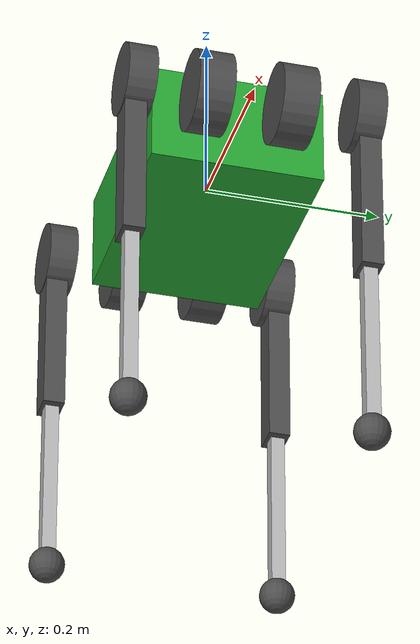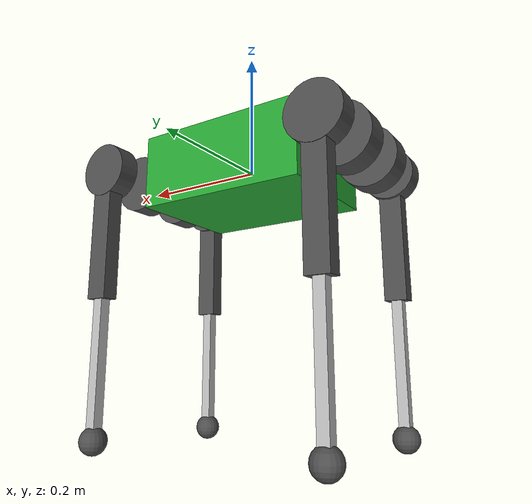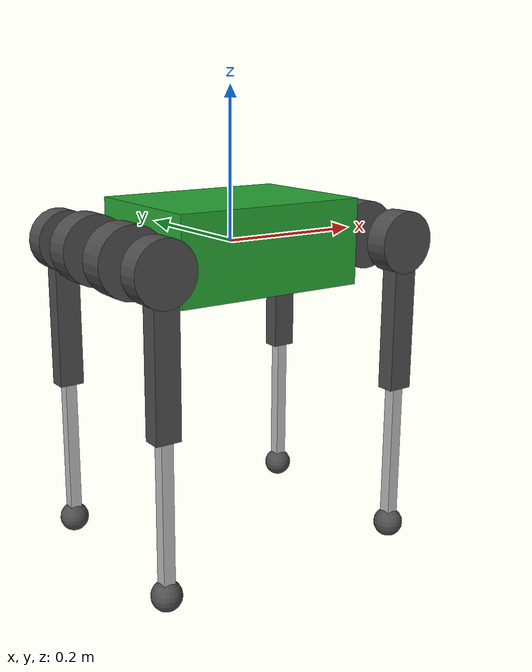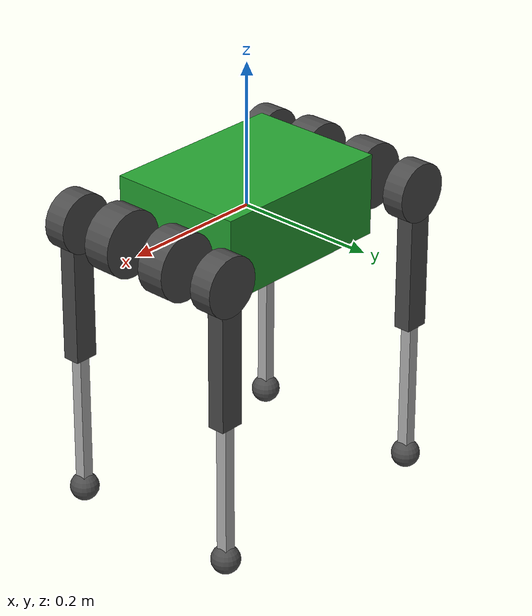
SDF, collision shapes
<sdf version='1.6'>
  <model name='a1_description'>
    <link name='base'>
      <pose frame=''>0 0 0 0 -0 0</pose>
      <inertial>
        <pose frame=''>0 0.004099 -0.0005 0 -0 0</pose>
        <mass>6.001</mass>
        <inertia>
          <ixx>0.0159533</ixx>
          <ixy>-3.66e-05</ixy>
          <ixz>-6.11e-05</ixz>
          <iyy>0.0378999</iyy>
          <iyz>-2.7498e-05</iyz>
          <izz>0.0457542</izz>
        </inertia>
      </inertial>
      <collision name='base_fixed_joint_lump__trunk_collision'>
        <pose frame=''>0 0 0 0 -0 0</pose>
        <geometry>
          <box>
            <size>0.267 0.194 0.114</size>
          </box>
        </geometry>
        <surface>
          <contact>
            <ode>
              <kp>1e+06</kp>
              <kd>1</kd>
            </ode>
          </contact>
          <friction>
            <ode>
              <mu>0.2</mu>
              <mu2>0.2</mu2>
            </ode>
          </friction>
        </surface>
      </collision>
      <collision name='base_fixed_joint_lump__imu_link_collision_1'>
        <pose frame=''>0 0 0 0 -0 0</pose>
        <geometry>
          <box>
            <size>0.001 0.001 0.001</size>
          </box>
        </geometry>
        <surface>
          <contact>
            <ode/>
          </contact>
          <friction>
            <ode>
              <mu>0.2</mu>
              <mu2>0.2</mu2>
            </ode>
          </friction>
        </surface>
      </collision>
      <visual name='base_visual'>
        <pose frame=''>0 0 0 0 -0 0</pose>
        <geometry>
          <box>
            <size>0.001 0.001 0.001</size>
          </box>
        </geometry>
        <material>
          <script>
            <name>Gazebo/Green</name>
            <uri>file://media/materials/scripts/gazebo.material</uri>
          </script>
        </material>
      </visual>
      <visual name='base_fixed_joint_lump__trunk_visual_1'>
        <pose frame=''>0 0 0 0 -0 0</pose>
        <geometry>
          <mesh>
            <scale>1 1 1</scale>
            <uri>model://a1_description/meshes/trunk.dae</uri>
          </mesh>
        </geometry>
        <material>
          <script>
            <uri>__default__</uri>
            <name>__default__</name>
          </script>
        </material>
      </visual>
      <visual name='base_fixed_joint_lump__imu_link_visual_2'>
        <pose frame=''>0 0 0 0 -0 0</pose>
        <geometry>
          <box>
            <size>0.001 0.001 0.001</size>
          </box>
        </geometry>
        <material>
          <script>
            <name>Gazebo/Red</name>
            <uri>file://media/materials/scripts/gazebo.material</uri>
          </script>
        </material>
      </visual>
      <velocity_decay/>
      <velocity_decay/>
      <velocity_decay/>
      <gravity>1</gravity>
      <sensor name='imu_sensor' type='imu'>
        <always_on>1</always_on>
        <update_rate>1000</update_rate>
        <visualize>1</visualize>
        <topic>__default_topic__</topic>
        <plugin name='imu_plugin' filename='libgazebo_ros_imu_sensor.so'>
          <topicName>trunk_imu</topicName>
          <bodyName>imu_link</bodyName>
          <updateRateHZ>1000.0</updateRateHZ>
          <gaussianNoise>0.0</gaussianNoise>
          <xyzOffset>0 0 0</xyzOffset>
          <rpyOffset>0 0 0</rpyOffset>
          <frameName>imu_link</frameName>
        </plugin>
        <pose frame=''>0 0 0 0 -0 0</pose>
      </sensor>
      <gravity>1</gravity>
      <velocity_decay/>
    </link>
    <link name='FL_hip'>
      <pose frame=''>0.1805 0.047 0 0 -0 0</pose>
      <inertial>
        <pose frame=''>-0.003311 0.000635 3.1e-05 0 -0 0</pose>
        <mass>0.696</mass>
        <inertia>
          <ixx>0.000469246</ixx>
          <ixy>-9.409e-06</ixy>
          <ixz>-3.42e-07</ixz>
          <iyy>0.00080749</iyy>
          <iyz>-4.66e-07</iyz>
          <izz>0.000552929</izz>
        </inertia>
      </inertial>
      <collision name='FL_hip_collision'>
        <pose frame=''>0 0 0 1.5708 -0 0</pose>
        <geometry>
          <cylinder>
            <length>0.04</length>
            <radius>0.046</radius>
          </cylinder>
        </geometry>
        <surface>
          <contact>
            <ode/>
          </contact>
          <friction>
            <ode>
              <mu>0.2</mu>
              <mu2>0.2</mu2>
            </ode>
          </friction>
        </surface>
      </collision>
      <collision name='FL_hip_fixed_joint_lump__FL_thigh_shoulder_collision_1'>
        <pose frame=''>0 0.081 0 1.5708 -0 0</pose>
        <geometry>
          <cylinder>
            <length>0.032</length>
            <radius>0.041</radius>
          </cylinder>
        </geometry>
      </collision>
      <visual name='FL_hip_visual'>
        <pose frame=''>0 0 0 0 -0 0</pose>
        <geometry>
          <mesh>
            <scale>1 1 1</scale>
            <uri>model://a1_description/meshes/hip.dae</uri>
          </mesh>
        </geometry>
        <material>
          <script>
            <name>Gazebo/DarkGrey</name>
            <uri>file://media/materials/scripts/gazebo.material</uri>
          </script>
        </material>
      </visual>
      <gravity>1</gravity>
      <velocity_decay/>
    </link>
    <joint name='FL_hip_joint' type='revolute'>
      <child>FL_hip</child>
      <parent>base</parent>
      <axis>
        <xyz>1 0 0</xyz>
        <limit>
          <lower>-0.802851</lower>
          <upper>0.802851</upper>
          <effort>33.5</effort>
          <velocity>21</velocity>
        </limit>
        <dynamics>
          <damping>0.01</damping>
          <friction>0.2</friction>
          <spring_reference>0</spring_reference>
          <spring_stiffness>0</spring_stiffness>
        </dynamics>
        <use_parent_model_frame>0</use_parent_model_frame>
      </axis>
    </joint>
    <link name='FL_thigh'>
      <pose frame=''>0.1805 0.1308 0 0 -0 0</pose>
      <inertial>
        <pose frame=''>-0.003237 -0.022327 -0.027326 0 -0 0</pose>
        <mass>1.013</mass>
        <inertia>
          <ixx>0.00552906</ixx>
          <ixy>4.825e-06</ixy>
          <ixz>0.000343869</ixz>
          <iyy>0.00513934</iyy>
          <iyz>2.2448e-05</iyz>
          <izz>0.00136779</izz>
        </inertia>
      </inertial>
      <collision name='FL_thigh_collision'>
        <pose frame=''>0 0 -0.1 3.14159 1.57079 3.14159</pose>
        <geometry>
          <box>
            <size>0.2 0.0245 0.034</size>
          </box>
        </geometry>
        <surface>
          <contact>
            <ode>
              <kp>1e+06</kp>
              <kd>1</kd>
            </ode>
          </contact>
          <friction>
            <ode>
              <mu>0.2</mu>
              <mu2>0.2</mu2>
            </ode>
          </friction>
        </surface>
      </collision>
      <visual name='FL_thigh_visual'>
        <pose frame=''>0 0 0 0 -0 0</pose>
        <geometry>
          <mesh>
            <scale>1 1 1</scale>
            <uri>model://a1_description/meshes/thigh.dae</uri>
          </mesh>
        </geometry>
        <material>
          <script>
            <name>Gazebo/DarkGrey</name>
            <uri>file://media/materials/scripts/gazebo.material</uri>
          </script>
        </material>
      </visual>
      <gravity>1</gravity>
      <velocity_decay/>
      <self_collide>1</self_collide>
    </link>
    <joint name='FL_thigh_joint' type='revolute'>
      <child>FL_thigh</child>
      <parent>FL_hip</parent>
      <axis>
        <xyz>0 1 0</xyz>
        <limit>
          <lower>-1.0472</lower>
          <upper>4.18879</upper>
          <effort>33.5</effort>
          <velocity>21</velocity>
        </limit>
        <dynamics>
          <damping>0.01</damping>
          <friction>0.2</friction>
          <spring_reference>0</spring_reference>
          <spring_stiffness>0</spring_stiffness>
        </dynamics>
        <use_parent_model_frame>0</use_parent_model_frame>
      </axis>
    </joint>
    <link name='FL_calf'>
      <pose frame=''>0.1805 0.1308 -0.2 0 -0 0</pose>
      <inertial>
        <pose frame=''>0.006435 0 -0.107388 0 -0 0</pose>
        <mass>0.166</mass>
        <inertia>
          <ixx>0.00299797</ixx>
          <ixy>0</ixy>
          <ixz>-0.000141163</ixz>
          <iyy>0.00301402</iyy>
          <iyz>0</iyz>
          <izz>3.2426e-05</izz>
        </inertia>
      </inertial>
      <collision name='FL_calf_collision'>
        <pose frame=''>0 0 -0.1 3.14159 1.57079 3.14159</pose>
        <geometry>
          <box>
            <size>0.2 0.016 0.016</size>
          </box>
        </geometry>
        <surface>
          <contact>
            <ode/>
          </contact>
          <friction>
            <ode>
              <mu>0.2</mu>
              <mu2>0.2</mu2>
            </ode>
          </friction>
        </surface>
      </collision>
      <visual name='FL_calf_visual'>
        <pose frame=''>0 0 0 0 -0 0</pose>
        <geometry>
          <mesh>
            <scale>1 1 1</scale>
            <uri>model://a1_description/meshes/calf.dae</uri>
          </mesh>
        </geometry>
        <material>
          <script>
            <uri>__default__</uri>
            <name>__default__</name>
          </script>
        </material>
      </visual>
      <velocity_decay/>
      <sensor name='FL_foot_contact' type='contact'>
        <update_rate>100</update_rate>
        <plugin name='contactPlugin' filename='libunitreeFootContactPlugin.so'/>
        <contact>
          <collision>FL_calf_fixed_joint_lump__FL_foot_collision_1</collision>
          <topic>__default_topic__</topic>
        </contact>
      </sensor>
      <gravity>1</gravity>
      <velocity_decay/>
      <self_collide>1</self_collide>
    </link>
    <joint name='FL_calf_joint' type='revolute'>
      <child>FL_calf</child>
      <parent>FL_thigh</parent>
      <axis>
        <xyz>0 1 0</xyz>
        <limit>
          <lower>-2.69653</lower>
          <upper>-0.916298</upper>
          <effort>33.5</effort>
          <velocity>21</velocity>
        </limit>
        <dynamics>
          <damping>0.01</damping>
          <friction>0.2</friction>
          <spring_reference>0</spring_reference>
          <spring_stiffness>0</spring_stiffness>
        </dynamics>
        <use_parent_model_frame>0</use_parent_model_frame>
      </axis>
    </joint>
    <link name='FL_foot'>
      <pose frame=''>0.1805 0.1308 -0.4 0 -0 0</pose>
      <inertial>
        <pose frame=''>0 0 0 0 -0 0</pose>
        <mass>0.06</mass>
        <inertia>
          <ixx>9.6e-06</ixx>
          <ixy>0</ixy>
          <ixz>0</ixz>
          <iyy>9.6e-06</iyy>
          <iyz>0</iyz>
          <izz>9.6e-06</izz>
        </inertia>
      </inertial>
      <collision name='FL_foot_collision'>
        <pose frame=''>0 0 0 0 -0 0</pose>
        <geometry>
          <sphere>
            <radius>0.02</radius>
          </sphere>
        </geometry>
        <surface>
          <contact>
            <ode>
              <kp>1e+06</kp>
              <kd>1</kd>
            </ode>
          </contact>
          <friction>
            <ode>
              <mu>0.6</mu>
              <mu2>0.6</mu2>
            </ode>
          </friction>
        </surface>
      </collision>
      <visual name='FL_foot_visual'>
        <pose frame=''>0 0 0 0 -0 0</pose>
        <geometry>
          <sphere>
            <radius>0.01</radius>
          </sphere>
        </geometry>
        <plugin name='drawForcePlugin' filename='libunitreeDrawForcePlugin.so'>
          <topicName>FL_foot_contact</topicName>
        </plugin>
        <material>
          <script>
            <name>Gazebo/DarkGrey</name>
            <uri>file://media/materials/scripts/gazebo.material</uri>
          </script>
        </material>
      </visual>
      <velocity_decay/>
      <gravity>1</gravity>
      <velocity_decay/>
      <self_collide>1</self_collide>
    </link>
    <joint name='FL_foot_fixed' type='fixed'>
      <child>FL_foot</child>
      <parent>FL_calf</parent>
      <axis>
        <dynamics>
          <spring_reference>0</spring_reference>
          <spring_stiffness>0</spring_stiffness>
        </dynamics>
        <xyz>0 0 1</xyz>
        <use_parent_model_frame>0</use_parent_model_frame>
        <limit>
          <lower>-1e+16</lower>
          <upper>1e+16</upper>
        </limit>
      </axis>
      <physics>
        <ode>
          <limit>
            <cfm>0</cfm>
            <erp>0.2</erp>
          </limit>
        </ode>
      </physics>
    </joint>
    <link name='FR_hip'>
      <pose frame=''>0.1805 -0.047 0 0 -0 0</pose>
      <inertial>
        <pose frame=''>-0.003311 -0.000635 3.1e-05 0 -0 0</pose>
        <mass>0.696</mass>
        <inertia>
          <ixx>0.000469246</ixx>
          <ixy>9.409e-06</ixy>
          <ixz>-3.42e-07</ixz>
          <iyy>0.00080749</iyy>
          <iyz>4.66e-07</iyz>
          <izz>0.000552929</izz>
        </inertia>
      </inertial>
      <collision name='FR_hip_collision'>
        <pose frame=''>0 0 0 1.5708 -0 0</pose>
        <geometry>
          <cylinder>
            <length>0.04</length>
            <radius>0.046</radius>
          </cylinder>
        </geometry>
        <surface>
          <contact>
            <ode/>
          </contact>
          <friction>
            <ode>
              <mu>0.2</mu>
              <mu2>0.2</mu2>
            </ode>
          </friction>
        </surface>
      </collision>
      <collision name='FR_hip_fixed_joint_lump__FR_thigh_shoulder_collision_1'>
        <pose frame=''>0 -0.081 0 1.5708 -0 0</pose>
        <geometry>
          <cylinder>
            <length>0.032</length>
            <radius>0.041</radius>
          </cylinder>
        </geometry>
      </collision>
      <visual name='FR_hip_visual'>
        <pose frame=''>0 0 0 -3.14159 -0 0</pose>
        <geometry>
          <mesh>
            <scale>1 1 1</scale>
            <uri>model://a1_description/meshes/hip.dae</uri>
          </mesh>
        </geometry>
        <material>
          <script>
            <name>Gazebo/DarkGrey</name>
            <uri>file://media/materials/scripts/gazebo.material</uri>
          </script>
        </material>
      </visual>
      <gravity>1</gravity>
      <velocity_decay/>
    </link>
    <joint name='FR_hip_joint' type='revolute'>
      <child>FR_hip</child>
      <parent>base</parent>
      <axis>
        <xyz>1 0 0</xyz>
        <limit>
          <lower>-0.802851</lower>
          <upper>0.802851</upper>
          <effort>33.5</effort>
          <velocity>21</velocity>
        </limit>
        <dynamics>
          <damping>0.01</damping>
          <friction>0.2</friction>
          <spring_reference>0</spring_reference>
          <spring_stiffness>0</spring_stiffness>
        </dynamics>
        <use_parent_model_frame>0</use_parent_model_frame>
      </axis>
    </joint>
    <link name='FR_thigh'>
      <pose frame=''>0.1805 -0.1308 0 0 -0 0</pose>
      <inertial>
        <pose frame=''>-0.003237 0.022327 -0.027326 0 -0 0</pose>
        <mass>1.013</mass>
        <inertia>
          <ixx>0.00552906</ixx>
          <ixy>-4.825e-06</ixy>
          <ixz>0.000343869</ixz>
          <iyy>0.00513934</iyy>
          <iyz>-2.2448e-05</iyz>
          <izz>0.00136779</izz>
        </inertia>
      </inertial>
      <collision name='FR_thigh_collision'>
        <pose frame=''>0 0 -0.1 3.14159 1.57079 3.14159</pose>
        <geometry>
          <box>
            <size>0.2 0.0245 0.034</size>
          </box>
        </geometry>
        <surface>
          <contact>
            <ode>
              <kp>1e+06</kp>
              <kd>1</kd>
            </ode>
          </contact>
          <friction>
            <ode>
              <mu>0.2</mu>
              <mu2>0.2</mu2>
            </ode>
          </friction>
        </surface>
      </collision>
      <visual name='FR_thigh_visual'>
        <pose frame=''>0 0 0 0 -0 0</pose>
        <geometry>
          <mesh>
            <scale>1 1 1</scale>
            <uri>model://a1_description/meshes/thigh_mirror.dae</uri>
          </mesh>
        </geometry>
        <material>
          <script>
            <name>Gazebo/DarkGrey</name>
            <uri>file://media/materials/scripts/gazebo.material</uri>
          </script>
        </material>
      </visual>
      <gravity>1</gravity>
      <velocity_decay/>
      <self_collide>1</self_collide>
    </link>
    <joint name='FR_thigh_joint' type='revolute'>
      <child>FR_thigh</child>
      <parent>FR_hip</parent>
      <axis>
        <xyz>0 1 0</xyz>
        <limit>
          <lower>-1.0472</lower>
          <upper>4.18879</upper>
          <effort>33.5</effort>
          <velocity>21</velocity>
        </limit>
        <dynamics>
          <damping>0.01</damping>
          <friction>0.2</friction>
          <spring_reference>0</spring_reference>
          <spring_stiffness>0</spring_stiffness>
        </dynamics>
        <use_parent_model_frame>0</use_parent_model_frame>
      </axis>
    </joint>
    <link name='FR_calf'>
      <pose frame=''>0.1805 -0.1308 -0.2 0 -0 0</pose>
      <inertial>
        <pose frame=''>0.006435 0 -0.107388 0 -0 0</pose>
        <mass>0.166</mass>
        <inertia>
          <ixx>0.00299797</ixx>
          <ixy>0</ixy>
          <ixz>-0.000141163</ixz>
          <iyy>0.00301402</iyy>
          <iyz>0</iyz>
          <izz>3.2426e-05</izz>
        </inertia>
      </inertial>
      <collision name='FR_calf_collision'>
        <pose frame=''>0 0 -0.1 3.14159 1.57079 3.14159</pose>
        <geometry>
          <box>
            <size>0.2 0.016 0.016</size>
          </box>
        </geometry>
        <surface>
          <contact>
            <ode/>
          </contact>
          <friction>
            <ode>
              <mu>0.2</mu>
              <mu2>0.2</mu2>
            </ode>
          </friction>
        </surface>
      </collision>
      <visual name='FR_calf_visual'>
        <pose frame=''>0 0 0 0 -0 0</pose>
        <geometry>
          <mesh>
            <scale>1 1 1</scale>
            <uri>model://a1_description/meshes/calf.dae</uri>
          </mesh>
        </geometry>
        <material>
          <script>
            <uri>__default__</uri>
            <name>__default__</name>
          </script>
        </material>
      </visual>
      <velocity_decay/>
      <sensor name='FR_foot_contact' type='contact'>
        <update_rate>100</update_rate>
        <plugin name='contactPlugin' filename='libunitreeFootContactPlugin.so'/>
        <contact>
          <collision>FR_calf_fixed_joint_lump__FR_foot_collision_1</collision>
          <topic>__default_topic__</topic>
        </contact>
      </sensor>
      <gravity>1</gravity>
      <velocity_decay/>
      <self_collide>1</self_collide>
    </link>
    <joint name='FR_calf_joint' type='revolute'>
      <child>FR_calf</child>
      <parent>FR_thigh</parent>
      <axis>
        <xyz>0 1 0</xyz>
        <limit>
          <lower>-2.69653</lower>
          <upper>-0.916298</upper>
          <effort>33.5</effort>
          <velocity>21</velocity>
        </limit>
        <dynamics>
          <damping>0.01</damping>
          <friction>0.2</friction>
          <spring_reference>0</spring_reference>
          <spring_stiffness>0</spring_stiffness>
        </dynamics>
        <use_parent_model_frame>0</use_parent_model_frame>
      </axis>
    </joint>
    <link name='FR_foot'>
      <pose frame=''>0.1805 -0.1308 -0.4 0 -0 0</pose>
      <inertial>
        <pose frame=''>0 0 0 0 -0 0</pose>
        <mass>0.06</mass>
        <inertia>
          <ixx>9.6e-06</ixx>
          <ixy>0</ixy>
          <ixz>0</ixz>
          <iyy>9.6e-06</iyy>
          <iyz>0</iyz>
          <izz>9.6e-06</izz>
        </inertia>
      </inertial>
      <collision name='FR_foot_collision'>
        <pose frame=''>0 0 0 0 -0 0</pose>
        <geometry>
          <sphere>
            <radius>0.02</radius>
          </sphere>
        </geometry>
        <surface>
          <contact>
            <ode>
              <kp>1e+06</kp>
              <kd>1</kd>
            </ode>
          </contact>
          <friction>
            <ode>
              <mu>0.6</mu>
              <mu2>0.6</mu2>
            </ode>
          </friction>
        </surface>
      </collision>
      <visual name='FR_foot_visual'>
        <pose frame=''>0 0 0 0 -0 0</pose>
        <geometry>
          <sphere>
            <radius>0.01</radius>
          </sphere>
        </geometry>
        <plugin name='drawForcePlugin' filename='libunitreeDrawForcePlugin.so'>
          <topicName>FR_foot_contact</topicName>
        </plugin>
        <material>
          <script>
            <name>Gazebo/DarkGrey</name>
            <uri>file://media/materials/scripts/gazebo.material</uri>
          </script>
        </material>
      </visual>
      <velocity_decay/>
      <gravity>1</gravity>
      <velocity_decay/>
      <self_collide>1</self_collide>
    </link>
    <joint name='FR_foot_fixed' type='fixed'>
      <child>FR_foot</child>
      <parent>FR_calf</parent>
      <axis>
        <dynamics>
          <spring_reference>0</spring_reference>
          <spring_stiffness>0</spring_stiffness>
        </dynamics>
        <xyz>0 0 1</xyz>
        <use_parent_model_frame>0</use_parent_model_frame>
        <limit>
          <lower>-1e+16</lower>
          <upper>1e+16</upper>
        </limit>
      </axis>
      <physics>
        <ode>
          <limit>
            <cfm>0</cfm>
            <erp>0.2</erp>
          </limit>
        </ode>
      </physics>
    </joint>
    <link name='RL_hip'>
      <pose frame=''>-0.1805 0.047 0 0 -0 0</pose>
      <inertial>
        <pose frame=''>0.003311 0.000635 3.1e-05 0 -0 0</pose>
        <mass>0.696</mass>
        <inertia>
          <ixx>0.000469246</ixx>
          <ixy>9.409e-06</ixy>
          <ixz>3.42e-07</ixz>
          <iyy>0.00080749</iyy>
          <iyz>-4.66e-07</iyz>
          <izz>0.000552929</izz>
        </inertia>
      </inertial>
      <collision name='RL_hip_collision'>
        <pose frame=''>0 0 0 1.5708 -0 0</pose>
        <geometry>
          <cylinder>
            <length>0.04</length>
            <radius>0.046</radius>
          </cylinder>
        </geometry>
        <surface>
          <contact>
            <ode/>
          </contact>
          <friction>
            <ode>
              <mu>0.2</mu>
              <mu2>0.2</mu2>
            </ode>
          </friction>
        </surface>
      </collision>
      <collision name='RL_hip_fixed_joint_lump__RL_thigh_shoulder_collision_1'>
        <pose frame=''>0 0.081 0 1.5708 -0 0</pose>
        <geometry>
          <cylinder>
            <length>0.032</length>
            <radius>0.041</radius>
          </cylinder>
        </geometry>
      </collision>
      <visual name='RL_hip_visual'>
        <pose frame=''>0 0 0 3.14159 -0 3.14159</pose>
        <geometry>
          <mesh>
            <scale>1 1 1</scale>
            <uri>model://a1_description/meshes/hip.dae</uri>
          </mesh>
        </geometry>
        <material>
          <script>
            <name>Gazebo/DarkGrey</name>
            <uri>file://media/materials/scripts/gazebo.material</uri>
          </script>
        </material>
      </visual>
      <gravity>1</gravity>
      <velocity_decay/>
    </link>
    <joint name='RL_hip_joint' type='revolute'>
      <child>RL_hip</child>
      <parent>base</parent>
      <axis>
        <xyz>1 0 0</xyz>
        <limit>
          <lower>-0.802851</lower>
          <upper>0.802851</upper>
          <effort>33.5</effort>
          <velocity>21</velocity>
        </limit>
        <dynamics>
          <damping>0.01</damping>
          <friction>0.2</friction>
          <spring_reference>0</spring_reference>
          <spring_stiffness>0</spring_stiffness>
        </dynamics>
        <use_parent_model_frame>0</use_parent_model_frame>
      </axis>
    </joint>
    <link name='RL_thigh'>
      <pose frame=''>-0.1805 0.1308 0 0 -0 0</pose>
      <inertial>
        <pose frame=''>-0.003237 -0.022327 -0.027326 0 -0 0</pose>
        <mass>1.013</mass>
        <inertia>
          <ixx>0.00552906</ixx>
          <ixy>4.825e-06</ixy>
          <ixz>0.000343869</ixz>
          <iyy>0.00513934</iyy>
          <iyz>2.2448e-05</iyz>
          <izz>0.00136779</izz>
        </inertia>
      </inertial>
      <collision name='RL_thigh_collision'>
        <pose frame=''>0 0 -0.1 3.14159 1.57079 3.14159</pose>
        <geometry>
          <box>
            <size>0.2 0.0245 0.034</size>
          </box>
        </geometry>
        <surface>
          <contact>
            <ode>
              <kp>1e+06</kp>
              <kd>1</kd>
            </ode>
          </contact>
          <friction>
            <ode>
              <mu>0.2</mu>
              <mu2>0.2</mu2>
            </ode>
          </friction>
        </surface>
      </collision>
      <visual name='RL_thigh_visual'>
        <pose frame=''>0 0 0 0 -0 0</pose>
        <geometry>
          <mesh>
            <scale>1 1 1</scale>
            <uri>model://a1_description/meshes/thigh.dae</uri>
          </mesh>
        </geometry>
        <material>
          <script>
            <name>Gazebo/DarkGrey</name>
            <uri>file://media/materials/scripts/gazebo.material</uri>
          </script>
        </material>
      </visual>
      <gravity>1</gravity>
      <velocity_decay/>
      <self_collide>1</self_collide>
    </link>
    <joint name='RL_thigh_joint' type='revolute'>
      <child>RL_thigh</child>
      <parent>RL_hip</parent>
      <axis>
        <xyz>0 1 0</xyz>
        <limit>
          <lower>-1.0472</lower>
          <upper>4.18879</upper>
          <effort>33.5</effort>
          <velocity>21</velocity>
        </limit>
        <dynamics>
          <damping>0.01</damping>
          <friction>0.2</friction>
          <spring_reference>0</spring_reference>
          <spring_stiffness>0</spring_stiffness>
        </dynamics>
        <use_parent_model_frame>0</use_parent_model_frame>
      </axis>
    </joint>
    <link name='RL_calf'>
      <pose frame=''>-0.1805 0.1308 -0.2 0 -0 0</pose>
      <inertial>
        <pose frame=''>0.006435 0 -0.107388 0 -0 0</pose>
        <mass>0.166</mass>
        <inertia>
          <ixx>0.00299797</ixx>
          <ixy>0</ixy>
          <ixz>-0.000141163</ixz>
          <iyy>0.00301402</iyy>
          <iyz>0</iyz>
          <izz>3.2426e-05</izz>
        </inertia>
      </inertial>
      <collision name='RL_calf_collision'>
        <pose frame=''>0 0 -0.1 3.14159 1.57079 3.14159</pose>
        <geometry>
          <box>
            <size>0.2 0.016 0.016</size>
          </box>
        </geometry>
        <surface>
          <contact>
            <ode/>
          </contact>
          <friction>
            <ode>
              <mu>0.2</mu>
              <mu2>0.2</mu2>
            </ode>
          </friction>
        </surface>
      </collision>
      <visual name='RL_calf_visual'>
        <pose frame=''>0 0 0 0 -0 0</pose>
        <geometry>
          <mesh>
            <scale>1 1 1</scale>
            <uri>model://a1_description/meshes/calf.dae</uri>
          </mesh>
        </geometry>
        <material>
          <script>
            <uri>__default__</uri>
            <name>__default__</name>
          </script>
        </material>
      </visual>
      <velocity_decay/>
      <sensor name='RL_foot_contact' type='contact'>
        <update_rate>100</update_rate>
        <plugin name='contactPlugin' filename='libunitreeFootContactPlugin.so'/>
        <contact>
          <collision>RL_calf_fixed_joint_lump__RL_foot_collision_1</collision>
          <topic>__default_topic__</topic>
        </contact>
      </sensor>
      <gravity>1</gravity>
      <velocity_decay/>
      <self_collide>1</self_collide>
    </link>
    <joint name='RL_calf_joint' type='revolute'>
      <child>RL_calf</child>
      <parent>RL_thigh</parent>
      <axis>
        <xyz>0 1 0</xyz>
        <limit>
          <lower>-2.69653</lower>
          <upper>-0.916298</upper>
          <effort>33.5</effort>
          <velocity>21</velocity>
        </limit>
        <dynamics>
          <damping>0.01</damping>
          <friction>0.2</friction>
          <spring_reference>0</spring_reference>
          <spring_stiffness>0</spring_stiffness>
        </dynamics>
        <use_parent_model_frame>0</use_parent_model_frame>
      </axis>
    </joint>
    <link name='RL_foot'>
      <pose frame=''>-0.1805 0.1308 -0.4 0 -0 0</pose>
      <inertial>
        <pose frame=''>0 0 0 0 -0 0</pose>
        <mass>0.06</mass>
        <inertia>
          <ixx>9.6e-06</ixx>
          <ixy>0</ixy>
          <ixz>0</ixz>
          <iyy>9.6e-06</iyy>
          <iyz>0</iyz>
          <izz>9.6e-06</izz>
        </inertia>
      </inertial>
      <collision name='RL_foot_collision'>
        <pose frame=''>0 0 0 0 -0 0</pose>
        <geometry>
          <sphere>
            <radius>0.02</radius>
          </sphere>
        </geometry>
        <surface>
          <contact>
            <ode>
              <kp>1e+06</kp>
              <kd>1</kd>
            </ode>
          </contact>
          <friction>
            <ode>
              <mu>0.6</mu>
              <mu2>0.6</mu2>
            </ode>
          </friction>
        </surface>
      </collision>
      <visual name='RL_foot_visual'>
        <pose frame=''>0 0 0 0 -0 0</pose>
        <geometry>
          <sphere>
            <radius>0.01</radius>
          </sphere>
        </geometry>
        <plugin name='drawForcePlugin' filename='libunitreeDrawForcePlugin.so'>
          <topicName>RL_foot_contact</topicName>
        </plugin>
        <material>
          <script>
            <name>Gazebo/DarkGrey</name>
            <uri>file://media/materials/scripts/gazebo.material</uri>
          </script>
        </material>
      </visual>
      <velocity_decay/>
      <gravity>1</gravity>
      <velocity_decay/>
      <self_collide>1</self_collide>
    </link>
    <joint name='RL_foot_fixed' type='fixed'>
      <child>RL_foot</child>
      <parent>RL_calf</parent>
      <axis>
        <dynamics>
          <spring_reference>0</spring_reference>
          <spring_stiffness>0</spring_stiffness>
        </dynamics>
        <xyz>0 0 1</xyz>
        <use_parent_model_frame>0</use_parent_model_frame>
        <limit>
          <lower>-1e+16</lower>
          <upper>1e+16</upper>
        </limit>
      </axis>
      <physics>
        <ode>
          <limit>
            <cfm>0</cfm>
            <erp>0.2</erp>
          </limit>
        </ode>
      </physics>
    </joint>
    <link name='RR_hip'>
      <pose frame=''>-0.1805 -0.047 0 0 -0 0</pose>
      <inertial>
        <pose frame=''>0.003311 -0.000635 3.1e-05 0 -0 0</pose>
        <mass>0.696</mass>
        <inertia>
          <ixx>0.000469246</ixx>
          <ixy>-9.409e-06</ixy>
          <ixz>3.42e-07</ixz>
          <iyy>0.00080749</iyy>
          <iyz>4.66e-07</iyz>
          <izz>0.000552929</izz>
        </inertia>
      </inertial>
      <collision name='RR_hip_collision'>
        <pose frame=''>0 0 0 1.5708 -0 0</pose>
        <geometry>
          <cylinder>
            <length>0.04</length>
            <radius>0.046</radius>
          </cylinder>
        </geometry>
        <surface>
          <contact>
            <ode/>
          </contact>
          <friction>
            <ode>
              <mu>0.2</mu>
              <mu2>0.2</mu2>
            </ode>
          </friction>
        </surface>
      </collision>
      <collision name='RR_hip_fixed_joint_lump__RR_thigh_shoulder_collision_1'>
        <pose frame=''>0 -0.081 0 1.5708 -0 0</pose>
        <geometry>
          <cylinder>
            <length>0.032</length>
            <radius>0.041</radius>
          </cylinder>
        </geometry>
      </collision>
      <visual name='RR_hip_visual'>
        <pose frame=''>0 0 0 0 -0 3.14159</pose>
        <geometry>
          <mesh>
            <scale>1 1 1</scale>
            <uri>model://a1_description/meshes/hip.dae</uri>
          </mesh>
        </geometry>
        <material>
          <script>
            <name>Gazebo/DarkGrey</name>
            <uri>file://media/materials/scripts/gazebo.material</uri>
          </script>
        </material>
      </visual>
      <gravity>1</gravity>
      <velocity_decay/>
    </link>
    <joint name='RR_hip_joint' type='revolute'>
      <child>RR_hip</child>
      <parent>base</parent>
      <axis>
        <xyz>1 0 0</xyz>
        <limit>
          <lower>-0.802851</lower>
          <upper>0.802851</upper>
          <effort>33.5</effort>
          <velocity>21</velocity>
        </limit>
        <dynamics>
          <damping>0.01</damping>
          <friction>0.2</friction>
          <spring_reference>0</spring_reference>
          <spring_stiffness>0</spring_stiffness>
        </dynamics>
        <use_parent_model_frame>0</use_parent_model_frame>
      </axis>
    </joint>
    <link name='RR_thigh'>
      <pose frame=''>-0.1805 -0.1308 0 0 -0 0</pose>
      <inertial>
        <pose frame=''>-0.003237 0.022327 -0.027326 0 -0 0</pose>
        <mass>1.013</mass>
        <inertia>
          <ixx>0.00552906</ixx>
          <ixy>-4.825e-06</ixy>
          <ixz>0.000343869</ixz>
          <iyy>0.00513934</iyy>
          <iyz>-2.2448e-05</iyz>
          <izz>0.00136779</izz>
        </inertia>
      </inertial>
      <collision name='RR_thigh_collision'>
        <pose frame=''>0 0 -0.1 3.14159 1.57079 3.14159</pose>
        <geometry>
          <box>
            <size>0.2 0.0245 0.034</size>
          </box>
        </geometry>
        <surface>
          <contact>
            <ode>
              <kp>1e+06</kp>
              <kd>1</kd>
            </ode>
          </contact>
          <friction>
            <ode>
              <mu>0.2</mu>
              <mu2>0.2</mu2>
            </ode>
          </friction>
        </surface>
      </collision>
      <visual name='RR_thigh_visual'>
        <pose frame=''>0 0 0 0 -0 0</pose>
        <geometry>
          <mesh>
            <scale>1 1 1</scale>
            <uri>model://a1_description/meshes/thigh_mirror.dae</uri>
          </mesh>
        </geometry>
        <material>
          <script>
            <name>Gazebo/DarkGrey</name>
            <uri>file://media/materials/scripts/gazebo.material</uri>
          </script>
        </material>
      </visual>
      <gravity>1</gravity>
      <velocity_decay/>
      <self_collide>1</self_collide>
    </link>
    <joint name='RR_thigh_joint' type='revolute'>
      <child>RR_thigh</child>
      <parent>RR_hip</parent>
      <axis>
        <xyz>0 1 0</xyz>
        <limit>
          <lower>-1.0472</lower>
          <upper>4.18879</upper>
          <effort>33.5</effort>
          <velocity>21</velocity>
        </limit>
        <dynamics>
          <damping>0.01</damping>
          <friction>0.2</friction>
          <spring_reference>0</spring_reference>
          <spring_stiffness>0</spring_stiffness>
        </dynamics>
        <use_parent_model_frame>0</use_parent_model_frame>
      </axis>
    </joint>
    <link name='RR_calf'>
      <pose frame=''>-0.1805 -0.1308 -0.2 0 -0 0</pose>
      <inertial>
        <pose frame=''>0.006435 0 -0.107388 0 -0 0</pose>
        <mass>0.166</mass>
        <inertia>
          <ixx>0.00299797</ixx>
          <ixy>0</ixy>
          <ixz>-0.000141163</ixz>
          <iyy>0.00301402</iyy>
          <iyz>0</iyz>
          <izz>3.2426e-05</izz>
        </inertia>
      </inertial>
      <collision name='RR_calf_collision'>
        <pose frame=''>0 0 -0.1 3.14159 1.57079 3.14159</pose>
        <geometry>
          <box>
            <size>0.2 0.016 0.016</size>
          </box>
        </geometry>
        <surface>
          <contact>
            <ode/>
          </contact>
          <friction>
            <ode>
              <mu>0.2</mu>
              <mu2>0.2</mu2>
            </ode>
          </friction>
        </surface>
      </collision>
      <visual name='RR_calf_visual'>
        <pose frame=''>0 0 0 0 -0 0</pose>
        <geometry>
          <mesh>
            <scale>1 1 1</scale>
            <uri>model://a1_description/meshes/calf.dae</uri>
          </mesh>
        </geometry>
        <material>
          <script>
            <uri>__default__</uri>
            <name>__default__</name>
          </script>
        </material>
      </visual>
      <velocity_decay/>
      <sensor name='RR_foot_contact' type='contact'>
        <update_rate>100</update_rate>
        <plugin name='contactPlugin' filename='libunitreeFootContactPlugin.so'/>
        <contact>
          <collision>RR_calf_fixed_joint_lump__RR_foot_collision_1</collision>
          <topic>__default_topic__</topic>
        </contact>
      </sensor>
      <gravity>1</gravity>
      <velocity_decay/>
      <self_collide>1</self_collide>
    </link>
    <joint name='RR_calf_joint' type='revolute'>
      <child>RR_calf</child>
      <parent>RR_thigh</parent>
      <axis>
        <xyz>0 1 0</xyz>
        <limit>
          <lower>-2.69653</lower>
          <upper>-0.916298</upper>
          <effort>33.5</effort>
          <velocity>21</velocity>
        </limit>
        <dynamics>
          <damping>0.01</damping>
          <friction>0.2</friction>
          <spring_reference>0</spring_reference>
          <spring_stiffness>0</spring_stiffness>
        </dynamics>
        <use_parent_model_frame>0</use_parent_model_frame>
      </axis>
    </joint>
    <link name='RR_foot'>
      <pose frame=''>-0.1805 -0.1308 -0.4 0 -0 0</pose>
      <inertial>
        <pose frame=''>0 0 0 0 -0 0</pose>
        <mass>0.06</mass>
        <inertia>
          <ixx>9.6e-06</ixx>
          <ixy>0</ixy>
          <ixz>0</ixz>
          <iyy>9.6e-06</iyy>
          <iyz>0</iyz>
          <izz>9.6e-06</izz>
        </inertia>
      </inertial>
      <collision name='RR_foot_collision'>
        <pose frame=''>0 0 0 0 -0 0</pose>
        <geometry>
          <sphere>
            <radius>0.02</radius>
          </sphere>
        </geometry>
        <surface>
          <contact>
            <ode>
              <kp>1e+06</kp>
              <kd>1</kd>
            </ode>
          </contact>
          <friction>
            <ode>
              <mu>0.6</mu>
              <mu2>0.6</mu2>
            </ode>
          </friction>
        </surface>
      </collision>
      <visual name='RR_foot_visual'>
        <pose frame=''>0 0 0 0 -0 0</pose>
        <geometry>
          <sphere>
            <radius>0.01</radius>
          </sphere>
        </geometry>
        <plugin name='drawForcePlugin' filename='libunitreeDrawForcePlugin.so'>
          <topicName>RR_foot_contact</topicName>
        </plugin>
        <material>
          <script>
            <name>Gazebo/DarkGrey</name>
            <uri>file://media/materials/scripts/gazebo.material</uri>
          </script>
        </material>
      </visual>
      <velocity_decay/>
      <gravity>1</gravity>
      <velocity_decay/>
      <self_collide>1</self_collide>
    </link>
    <joint name='RR_foot_fixed' type='fixed'>
      <child>RR_foot</child>
      <parent>RR_calf</parent>
      <axis>
        <dynamics>
          <spring_reference>0</spring_reference>
          <spring_stiffness>0</spring_stiffness>
        </dynamics>
        <xyz>0 0 1</xyz>
        <use_parent_model_frame>0</use_parent_model_frame>
        <limit>
          <lower>-1e+16</lower>
          <upper>1e+16</upper>
        </limit>
      </axis>
      <physics>
        <ode>
          <limit>
            <cfm>0</cfm>
            <erp>0.2</erp>
          </limit>
        </ode>
      </physics>
    </joint>
    <plugin name='gazebo_ros_control' filename='libgazebo_ros_control.so'>
      <robotNamespace>/a1_gazebo</robotNamespace>
      <robotSimType>gazebo_ros_control/DefaultRobotHWSim</robotSimType>
    </plugin>
    <plugin name='3dplotTrunk' filename='libLinkPlot3DPlugin.so'>
      <frequency>10</frequency>
      <plot>
        <link>base</link>
        <pose>0 0 0 0 0 0</pose>
        <material>Gazebo/Yellow</material>
      </plot>
    </plugin>
    <plugin name='3dplot' filename='libLinkPlot3DPlugin.so'>
      <frequency>1000</frequency>
      <plot>
        <link>FR_calf</link>
        <pose>0 0 -0.2 0 0 0</pose>
        <material>Gazebo/Yellow</material>
      </plot>
    </plugin>
    <plugin name='gazebo_ros_force' filename='libgazebo_ros_force.so'>
      <topicName>/apply_force/trunk</topicName>
      <bodyName>base</bodyName>
      <xyzOffset>0 0 0</xyzOffset>
      <rpyOffset>0 -0 0</rpyOffset>
    </plugin>
    <static>0</static>
    <plugin name='ground_truth_estimator' filename='libground_truth_estimator.so'>
      <updateRateHZ>100.0</updateRateHZ>
    </plugin>
  </model>
</sdf>
